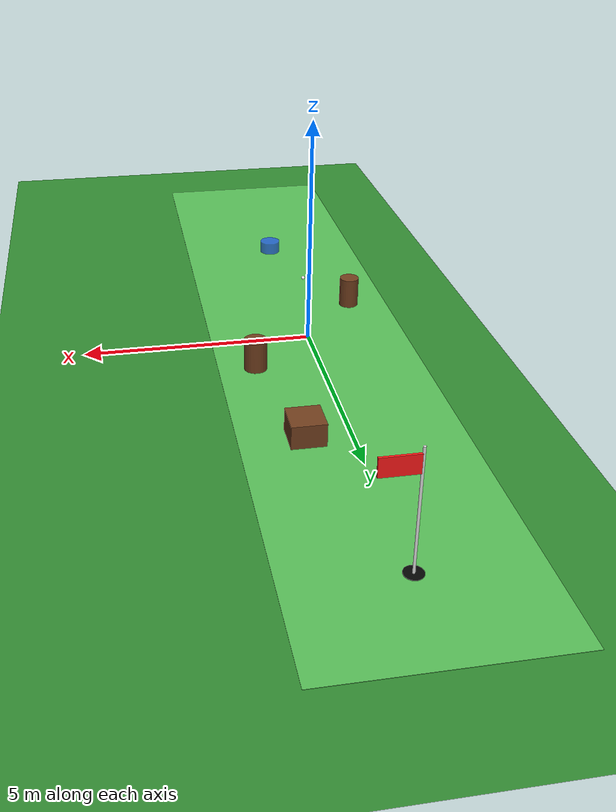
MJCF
<mujoco model="golf_course_basic_scene">

  <!-- 1. 컴파일 및 물리 옵션 -->
  <compiler angle="radian"/>

  <option timestep="0.002"
          gravity="0 0 -9.81"/>

  <!-- 2. asset: 색상/재질/텍스처 등 재사용 자원 -->
  <asset>

    <!-- 바닥용 재질 -->
    <material name="mat_grass"
              rgba="0.20 0.55 0.20 1"/>

    <!-- 페어웨이용 재질 -->
    <material name="mat_fairway"
              rgba="0.35 0.75 0.35 1"/>

    <!-- 홀컵용 어두운 재질 -->
    <material name="mat_hole"
              rgba="0.02 0.02 0.02 1"/>

    <!-- 깃대용 흰색 재질 -->
    <material name="mat_flag_pole"
              rgba="0.9 0.9 0.9 1"/>

    <!-- 깃발용 빨간색 재질 -->
    <material name="mat_flag"
              rgba="1.0 0.1 0.1 1"/>

    <!-- 골프공용 흰색 재질 -->
    <material name="mat_ball"
              rgba="1 1 1 1"/>

    <!-- 장애물용 갈색 재질 -->
    <material name="mat_obstacle"
              rgba="0.45 0.25 0.12 1"/>

    <!-- 골퍼 target 표시용 파란색 재질 -->
    <material name="mat_golfer_target"
              rgba="0.1 0.3 1.0 0.7"/>

  </asset>

  <!-- 3. worldbody: 실제 환경 배치 -->
  <worldbody>

    <!-- 3-1. 조명 -->
    <light name="sun_light"
           pos="0 -3 8"
           dir="0 0 -1"
           diffuse="0.8 0.8 0.8"/>

    <!-- 3-2. 카메라 -->
    <camera name="overview_camera"
            pos="0 -10 7"
            xyaxes="1 0 0 0 0.6 0.8"/>

    <!-- 3-3. 전체 잔디 바닥 -->
    <geom name="grass_ground"
          type="plane"
          size="15 15 0.1"
          material="mat_grass"
          friction="1.0 0.005 0.0001"/>

    <!-- 3-4. 페어웨이 이동 구역 -->
    <!-- MuJoCo plane은 무한 평면에 가까우므로, 여기서는 얇은 box로
         페어웨이 영역을 시각적으로 표현한다. -->
    <body name="fairway_visual" pos="0 0 0.005">

      <geom name="fairway_area"
            type="box"
            size="2.2 10.0 0.005"
            material="mat_fairway"
            contype="0"
            conaffinity="0"/>

    </body>

    <!-- 3-5. 홀컵 -->
    <!-- 실제 구멍을 파는 대신, 검은색 원통으로 위치를 표시한다. -->
    <body name="hole_cup" pos="0 8 0.012">

      <geom name="hole_cup_geom"
            type="cylinder"
            size="0.18 0.01"
            material="mat_hole"
            contype="0"
            conaffinity="0"/>

    </body>

    <!-- 3-6. 깃대 -->
    <body name="flag_pole" pos="0 8 0">

      <geom name="flag_pole_geom"
            type="cylinder"
            size="0.025 1.2"
            pos="0 0 1.2"
            material="mat_flag_pole"
            contype="0"
            conaffinity="0"/>

      <geom name="flag_geom"
            type="box"
            size="0.35 0.02 0.18"
            pos="0.35 0 2.1"
            material="mat_flag"
            contype="0"
            conaffinity="0"/>

    </body>

    <!-- 3-7. 골프공 -->
    <body name="golf_ball" pos="-0.5 -3 0.08">

      <joint name="golf_ball_free_joint"
             type="free"/>

      <geom name="golf_ball_geom"
            type="sphere"
            size="0.043"
            mass="0.046"
            material="mat_ball"
            friction="0.4 0.005 0.0001"/>

    </body>

    <!-- 3-8. 골퍼 target marker -->
    <!-- 초기에는 실제 사람 모델 대신 파란색 원통으로 골퍼 위치를 표현한다. -->
    <body name="golfer_target" pos="0 -5 0.15">

      <geom name="golfer_target_geom"
            type="cylinder"
            size="0.25 0.15"
            material="mat_golfer_target"
            contype="0"
            conaffinity="0"/>

    </body>

    <!-- 3-9. 장애물 -->
    <body name="obstacle_tree_01" pos="-1.3 -1.5 0.35">

      <geom name="obstacle_tree_01_geom"
            type="cylinder"
            size="0.22 0.35"
            material="mat_obstacle"/>

    </body>

    <body name="obstacle_tree_02" pos="1.4 1.2 0.35">

      <geom name="obstacle_tree_02_geom"
            type="cylinder"
            size="0.25 0.35"
            material="mat_obstacle"/>

    </body>

    <body name="obstacle_marker_box" pos="0.9 4.0 0.25">

      <geom name="obstacle_marker_box_geom"
            type="box"
            size="0.35 0.35 0.25"
            material="mat_obstacle"/>

    </body>

  </worldbody>

</mujoco>
